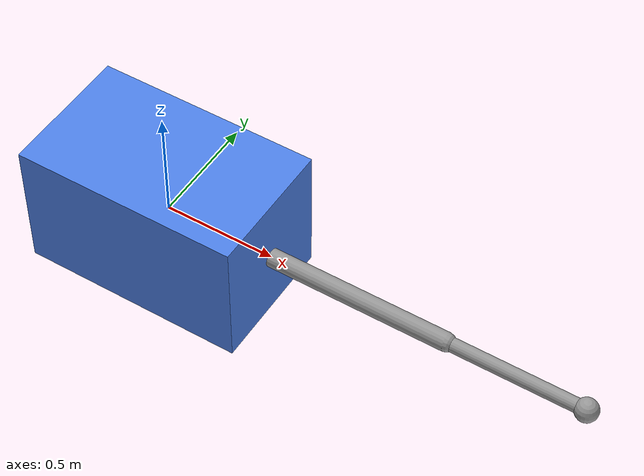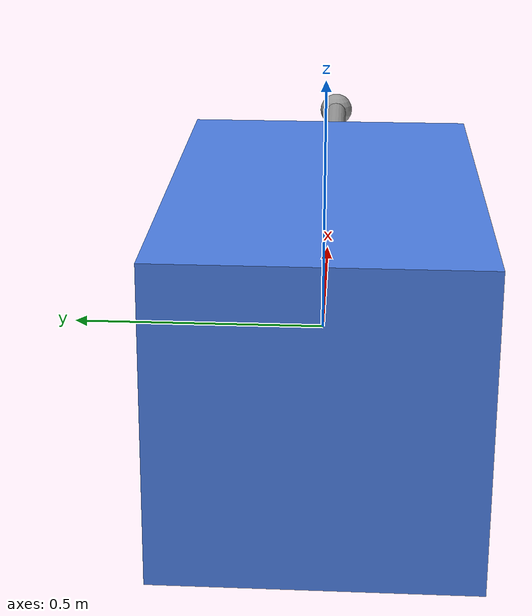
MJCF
<mujoco model="spacecraft_arm">
  <compiler angle="radian"/>
  <option timestep="0.01" gravity="0 0 0"/>

  <default>
    <joint damping="0.5" armature="0.01"/>
    <geom rgba="0.6 0.6 0.6 1"/>
  </default>

  <worldbody>
    <!-- Spacecraft bus — free-floating base -->
    <body name="spacecraft" pos="0 0 0">
      <freejoint name="base"/>
      <geom type="box" size="0.5 0.3 0.3" mass="200" rgba="0.3 0.5 0.9 1"/>

      <!-- Shoulder joint -->
      <body name="link1" pos="0.5 0 0">
        <joint name="shoulder" type="hinge" axis="0 1 0" range="-3.14 3.14"/>
        <geom type="capsule" fromto="0 0 0 0.8 0 0" size="0.04" mass="5"/>

        <!-- Elbow joint -->
        <body name="link2" pos="0.8 0 0">
          <joint name="elbow" type="hinge" axis="0 1 0" range="-3.14 3.14"/>
          <geom type="capsule" fromto="0 0 0 0.6 0 0" size="0.03" mass="3"/>

          <!-- End effector -->
          <body name="ee" pos="0.6 0 0">
            <geom type="sphere" size="0.05" mass="1"/>
          </body>
        </body>
      </body>
    </body>
  </worldbody>

  <actuator>
    <position joint="shoulder" kp="10" ctrlrange="-3.14 3.14"/>
    <position joint="elbow" kp="10" ctrlrange="-3.14 3.14"/>
  </actuator>
</mujoco>
